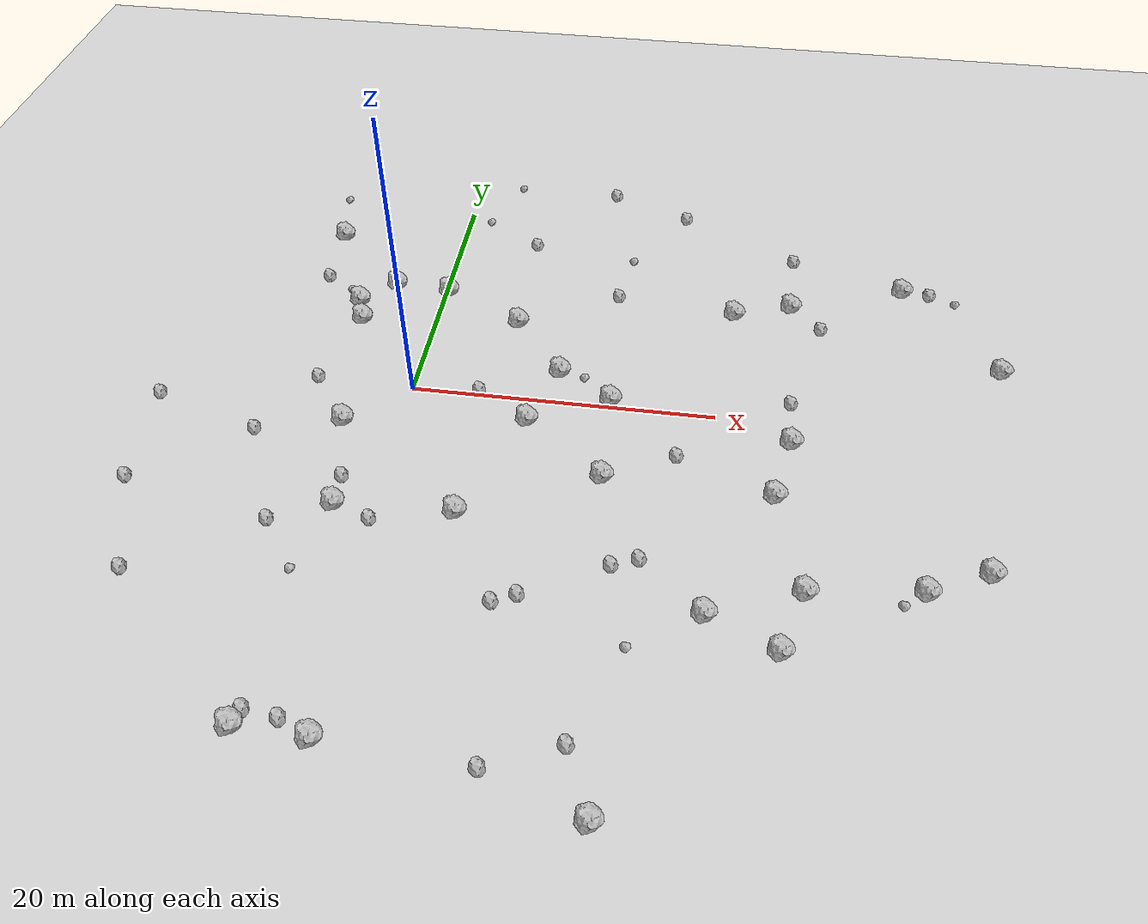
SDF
<sdf version="1.6">
 <world name="default">
  <include><uri>model://custom_ground</uri></include>
  <include><uri>model://sun</uri></include>
  <model name="rock1_0_0">
   <include><uri>model://rock1</uri><pose>-2.222451757468818 -10.581837322322098 0.5 0 0 0</pose></include>
  </model>
  <model name="rock1_0_1">
   <include><uri>model://rock1</uri><pose>13.431204475416507 -6.212510793779707 0.5 0 0 0</pose></include>
  </model>
  <model name="rock1_0_2">
   <include><uri>model://rock1</uri><pose>23.98812630230826 -6.380002196509871 0.5 0 0 0</pose></include>
  </model>
  <model name="rock1_0_3">
   <include><uri>model://rock1</uri><pose>5.788360593615213 7.498749063140281 0.5 0 0 0</pose></include>
  </model>
  <model name="rock1_0_4">
   <include><uri>model://rock1</uri><pose>36.297842312038405 -10.63201407955609 0.5 0 0 0</pose></include>
  </model>
  <model name="rock1_0_5">
   <include><uri>model://rock1</uri><pose>-3.673466896162452 10.487624643882576 0.5 0 0 0</pose></include>
  </model>
  <model name="rock1_0_6">
   <include><uri>model://rock1</uri><pose>13.139871151805394 0.552819182357247 0.5 0 0 0</pose></include>
  </model>
  <model name="rock1_0_7">
   <include><uri>model://rock1</uri><pose>24.636827593836685 11.67862548527222 0.5 0 0 0</pose></include>
  </model>
  <model name="rock1_0_8">
   <include><uri>model://rock1</uri><pose>15.712053744864946 -28.399677827994843 0.5 0 0 0</pose></include>
  </model>
  <model name="rock1_0_9">
   <include><uri>model://rock1</uri><pose>20.318105948930288 -15.599340286045642 0.5 0 0 0</pose></include>
  </model>
  <model name="rock1_0_10">
   <include><uri>model://rock1</uri><pose>-5.146742986593953 6.408223766327964 0.5 0 0 0</pose></include>
  </model>
  <model name="rock1_0_11">
   <include><uri>model://rock1</uri><pose>38.66866254140542 6.712074489030556 0.5 0 0 0</pose></include>
  </model>
  <model name="rock1_0_12">
   <include><uri>model://rock1</uri><pose>8.03302220357995 -1.9810905043413705 0.5 0 0 0</pose></include>
  </model>
  <model name="rock1_0_13">
   <include><uri>model://rock1</uri><pose>24.55267013478904 -17.48800686914373 0.5 0 0 0</pose></include>
  </model>
  <model name="rock1_0_14">
   <include><uri>model://rock1</uri><pose>25.820789251070437 -13.34318893832253 0.5 0 0 0</pose></include>
  </model>
  <model name="rock1_0_15">
   <include><uri>model://rock1</uri><pose>24.89300810401307 -1.7372767933455187 0.5 0 0 0</pose></include>
  </model>
  <model name="rock1_0_16">
   <include><uri>model://rock1</uri><pose>-9.063444340631847 15.747886120385317 0.5 0 0 0</pose></include>
  </model>
  <model name="rock1_0_17">
   <include><uri>model://rock1</uri><pose>1.1594875276328125 -25.924989393205834 0.5 0 0 0</pose></include>
  </model>
  <model name="rock1_0_18">
   <include><uri>model://rock1</uri><pose>9.448681355708548 2.8246205017620056 0.5 0 0 0</pose></include>
  </model>
  <model name="rock1_0_19">
   <include><uri>model://rock1</uri><pose>-5.829622296791273 8.323586304736459 0.5 0 0 0</pose></include>
  </model>
  <model name="rock1_0_20">
   <include><uri>model://rock1</uri><pose>32.58449512415758 -12.450160009094255 0.5 0 0 0</pose></include>
  </model>
  <model name="rock1_0_21">
   <include><uri>model://rock1</uri><pose>0.20359520777629925 10.228618213182159 0.5 0 0 0</pose></include>
  </model>
  <model name="rock1_0_22">
   <include><uri>model://rock1</uri><pose>32.53880830151446 14.518566565510788 0.5 0 0 0</pose></include>
  </model>
  <model name="rock1_0_23">
   <include><uri>model://rock1</uri><pose>20.709840082996664 10.365866952207945 0.5 0 0 0</pose></include>
  </model>
  <model name="rock1_0_24">
   <include><uri>model://rock1</uri><pose>-3.088458912417206 -25.796888001827725 0.5 0 0 0</pose></include>
  </model>
  <model name="rock1_0_25">
   <include><uri>model://rock1</uri><pose>5.132533084155767 -10.209141645786122 0.5 0 0 0</pose></include>
  </model>
  <model name="rock1_0_26">
   <include><uri>model://rock1</uri><pose>-3.664957584647798 -3.596069182486975 0.5 0 0 0</pose></include>
  </model>
  <model name="rock2_0_0">
   <include><uri>model://rock2</uri><pose>-12.857767891418838 -16.966735291315985 0.3 0 0 0</pose></include>
  </model>
  <model name="rock2_0_1">
   <include><uri>model://rock2</uri><pose>5.6079594012556235 16.512398481083807 0.3 0 0 0</pose></include>
  </model>
  <model name="rock2_0_2">
   <include><uri>model://rock2</uri><pose>-0.7836273892650567 -25.06708542778844 0.3 0 0 0</pose></include>
  </model>
  <model name="rock2_0_3">
   <include><uri>model://rock2</uri><pose>12.425258170624637 11.25664188357294 0.3 0 0 0</pose></include>
  </model>
  <model name="rock2_0_4">
   <include><uri>model://rock2</uri><pose>14.00517450485875 -24.52540366140609 0.3 0 0 0</pose></include>
  </model>
  <model name="rock2_0_5">
   <include><uri>model://rock2</uri><pose>-5.766597762581789 -12.308486757114213 0.3 0 0 0</pose></include>
  </model>
  <model name="rock2_0_6">
   <include><uri>model://rock2</uri><pose>14.803636229237355 -12.935269273979163 0.3 0 0 0</pose></include>
  </model>
  <model name="rock2_0_7">
   <include><uri>model://rock2</uri><pose>-2.350208131022967 -8.350069708726451 0.3 0 0 0</pose></include>
  </model>
  <model name="rock2_0_8">
   <include><uri>model://rock2</uri><pose>24.77366572739905 1.803123050793669 0.3 0 0 0</pose></include>
  </model>
  <model name="rock2_0_9">
   <include><uri>model://rock2</uri><pose>-6.405589465014865 0.11690339163025598 0.3 0 0 0</pose></include>
  </model>
  <model name="rock2_0_10">
   <include><uri>model://rock2</uri><pose>-8.79626393382727 10.701662757841277 0.3 0 0 0</pose></include>
  </model>
  <model name="rock2_0_11">
   <include><uri>model://rock2</uri><pose>10.786899187268958 23.790147856266458 0.3 0 0 0</pose></include>
  </model>
  <model name="rock2_0_12">
   <include><uri>model://rock2</uri><pose>16.489319823847794 21.421496921812007 0.3 0 0 0</pose></include>
  </model>
  <model name="rock2_0_13">
   <include><uri>model://rock2</uri><pose>-16.226660996857277 -2.831444718046903 0.3 0 0 0</pose></include>
  </model>
  <model name="rock2_0_14">
   <include><uri>model://rock2</uri><pose>9.884910835786293 -15.697068048861901 0.3 0 0 0</pose></include>
  </model>
  <model name="rock2_0_15">
   <include><uri>model://rock2</uri><pose>17.79927869909566 -3.8778248679882523 0.3 0 0 0</pose></include>
  </model>
  <model name="rock2_0_16">
   <include><uri>model://rock2</uri><pose>-15.484288286318602 -10.208360715430619 0.3 0 0 0</pose></include>
  </model>
  <model name="rock2_0_17">
   <include><uri>model://rock2</uri><pose>24.733592866332955 17.046097120055514 0.3 0 0 0</pose></include>
  </model>
  <model name="rock2_0_18">
   <include><uri>model://rock2</uri><pose>0.22226969841980804 -11.455774205411625 0.3 0 0 0</pose></include>
  </model>
  <model name="rock2_0_19">
   <include><uri>model://rock2</uri><pose>26.69763789416099 9.551045638803139 0.3 0 0 0</pose></include>
  </model>
  <model name="rock2_0_20">
   <include><uri>model://rock2</uri><pose>16.362687763645354 -12.269689180704827 0.3 0 0 0</pose></include>
  </model>
  <model name="rock2_0_21">
   <include><uri>model://rock2</uri><pose>8.530997891612344 -16.37762561559681 0.3 0 0 0</pose></include>
  </model>
  <model name="rock2_0_22">
   <include><uri>model://rock2</uri><pose>-2.8156907772023914 -24.81346541279529 0.3 0 0 0</pose></include>
  </model>
  <model name="rock2_0_23">
   <include><uri>model://rock2</uri><pose>-9.010824459341043 -5.140114193493176 0.3 0 0 0</pose></include>
  </model>
  <model name="rock2_0_24">
   <include><uri>model://rock2</uri><pose>4.447849646169207 0.34883792226374766 0.3 0 0 0</pose></include>
  </model>
  <model name="rock2_0_25">
   <include><uri>model://rock2</uri><pose>9.846303212415386 -26.37446557634999 0.3 0 0 0</pose></include>
  </model>
  <model name="rock2_0_26">
   <include><uri>model://rock2</uri><pose>34.42104060309182 14.390495053352353 0.3 0 0 0</pose></include>
  </model>
  <model name="rock3_0_0">
   <include><uri>model://rock3</uri><pose>13.02801703517823 15.495464233933909 0.2 0 0 0</pose></include>
  </model>
  <model name="rock3_0_1">
   <include><uri>model://rock3</uri><pose>-3.2817453409163093 -15.706460912131616 0.2 0 0 0</pose></include>
  </model>
  <model name="rock3_0_2">
   <include><uri>model://rock3</uri><pose>16.273314336600585 -18.361629241672183 0.2 0 0 0</pose></include>
  </model>
  <model name="rock3_0_3">
   <include><uri>model://rock3</uri><pose>1.5870746881903592 18.96787159623407 0.2 0 0 0</pose></include>
  </model>
  <model name="rock3_0_4">
   <include><uri>model://rock3</uri><pose>36.17554093057456 13.620808841548467 0.2 0 0 0</pose></include>
  </model>
  <model name="rock3_0_5">
   <include><uri>model://rock3</uri><pose>-10.12861823920677 20.39893679689679 0.2 0 0 0</pose></include>
  </model>
  <model name="rock3_0_6">
   <include><uri>model://rock3</uri><pose>11.148865136412663 2.412103341329619 0.2 0 0 0</pose></include>
  </model>
  <model name="rock3_0_7">
   <include><uri>model://rock3</uri><pose>3.2357389139302697 23.813497938547314 0.2 0 0 0</pose></include>
  </model>
  <model name="rock3_0_8">
   <include><uri>model://rock3</uri><pose>-6.795664525450695 9.42172691415913 0.2 0 0 0</pose></include>
  </model>
  <model name="rock3_0_9">
   <include><uri>model://rock3</uri><pose>31.246860954281935 -13.534269866254839 0.2 0 0 0</pose></include>
  </model>
 </world>
</sdf>
